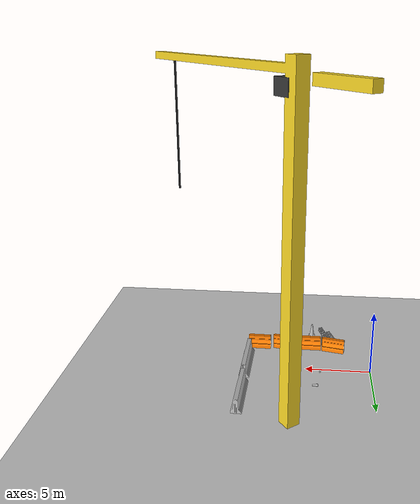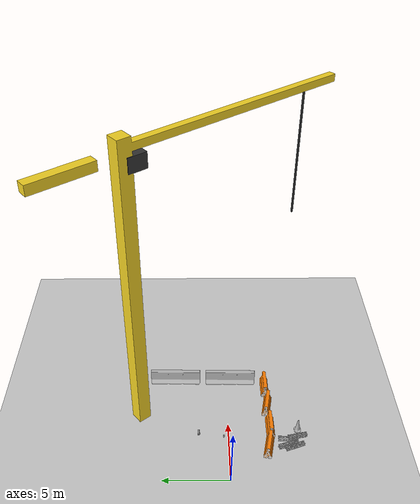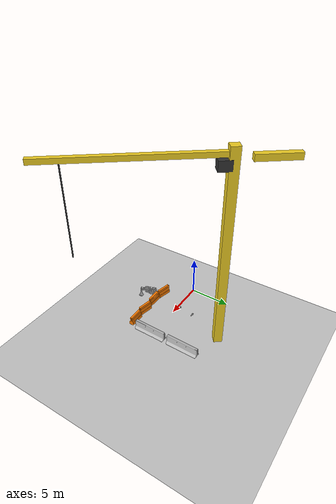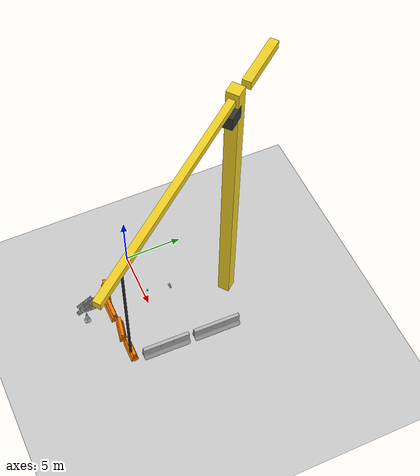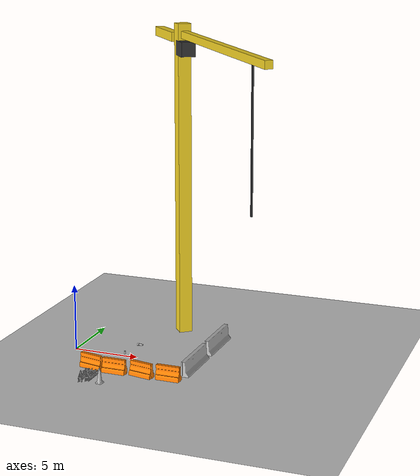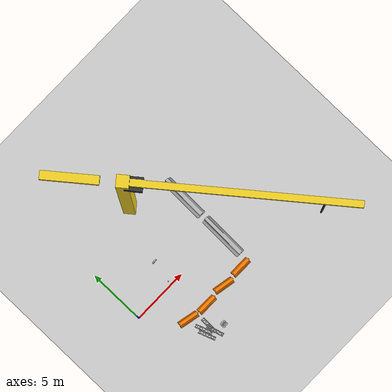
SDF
<sdf version="1.6">
 <world name="default">
  <model name="ground_plane">
   <static>1</static>
   <link name="link">
    <collision name="collision">
     <geometry><plane><normal>0 0 1</normal><size>100 100</size></plane></geometry>
     <surface><friction><ode><mu>100</mu><mu2>50</mu2></ode></friction></surface>
    </collision>
    <visual name="visual">
     <cast_shadows>0</cast_shadows>
     <geometry><plane><normal>0 0 1</normal><size>100 100</size></plane></geometry>
     <material>
      <script><uri>file://media/materials/scripts/gazebo.material</uri><name>Gazebo/Grey</name></script>
     </material>
    </visual>
   </link>
  </model>
  <model name="tower_crane">
   <static>1</static>
   <link name="link">
    <collision name="collision">
     <geometry><mesh><uri>model://tower_crane/meshes/tower_crane.dae</uri></mesh></geometry>
    </collision>
    <visual name="visual">
     <geometry><mesh><uri>model://tower_crane/meshes/tower_crane.dae</uri></mesh></geometry>
    </visual>
   </link>
   <pose>6.03726 6.79238 0 0 0 -0.898155</pose>
  </model>
  <model name="drc_practice_organge_jersey_barrier_clone_clone_clone_clone">
   <static>1</static>
   <link name="link">
    <visual name="visual">
     <geometry>
      <mesh><uri>model://drc_practice_orange_jersey_barrier/meshes/jersey_barrier.dae</uri></mesh>
     </geometry>
    </visual>
    <collision name="collision">
     <geometry>
      <mesh><uri>model://drc_practice_orange_jersey_barrier/meshes/jersey_barrier.dae</uri></mesh>
     </geometry>
    </collision>
   </link>
   <pose>2.74419 -2.98704 0 0 -0 1.36537</pose>
  </model>
  <model name="drc_practice_organge_jersey_barrier_clone_clone_clone_clone_0">
   <static>1</static>
   <link name="link">
    <visual name="visual">
     <geometry>
      <mesh><uri>model://drc_practice_orange_jersey_barrier/meshes/jersey_barrier.dae</uri></mesh>
     </geometry>
    </visual>
    <collision name="collision">
     <geometry>
      <mesh><uri>model://drc_practice_orange_jersey_barrier/meshes/jersey_barrier.dae</uri></mesh>
     </geometry>
    </collision>
   </link>
   <pose>4.65125 -3.23691 0 0 -0 1.56758</pose>
  </model>
  <model name="drc_practice_organge_jersey_barrier_clone_clone_clone_clone_0_clone">
   <static>1</static>
   <link name="link">
    <visual name="visual">
     <geometry>
      <mesh><uri>model://drc_practice_orange_jersey_barrier/meshes/jersey_barrier.dae</uri></mesh>
     </geometry>
    </visual>
    <collision name="collision">
     <geometry>
      <mesh><uri>model://drc_practice_orange_jersey_barrier/meshes/jersey_barrier.dae</uri></mesh>
     </geometry>
    </collision>
   </link>
   <pose>6.73423 -3.15665 0 0 -0 1.3882</pose>
  </model>
  <model name="drc_practice_organge_jersey_barrier_clone_clone_clone_clone_0_clone_0">
   <static>1</static>
   <link name="link">
    <visual name="visual">
     <geometry>
      <mesh><uri>model://drc_practice_orange_jersey_barrier/meshes/jersey_barrier.dae</uri></mesh>
     </geometry>
    </visual>
    <collision name="collision">
     <geometry>
      <mesh><uri>model://drc_practice_orange_jersey_barrier/meshes/jersey_barrier.dae</uri></mesh>
     </geometry>
    </collision>
   </link>
   <pose>8.77452 -3.12573 0 0 -0 1.56758</pose>
  </model>
  <model name="jersey_barrier">
   <static>1</static>
   <link name="link">
    <visual name="visual">
     <geometry><mesh><uri>model://jersey_barrier/meshes/jersey_barrier.dae</uri></mesh></geometry>
    </visual>
    <collision name="upright">
     <pose>0 0 0.5715 0 -0 0</pose>
     <geometry><box><size>4.06542 0.3063 1.143</size></box></geometry>
    </collision>
    <collision name="base">
     <pose>0 0 0.032258 0 -0 0</pose>
     <geometry><box><size>4.06542 0.8107 0.064516</size></box></geometry>
    </collision>
    <collision name="base2">
     <pose>0 0 0.1 0 -0 0</pose>
     <geometry><box><size>4.06542 0.65 0.1</size></box></geometry>
    </collision>
    <collision name="base3">
     <pose>0 0 0.2 0 -0 0</pose>
     <geometry><box><size>4.06542 0.5 0.1</size></box></geometry>
    </collision>
    <collision name="left-angle">
     <pose>0 -0.224 0.2401 0.9 -0 0</pose>
     <geometry><box><size>4.06542 0.5 0.064516</size></box></geometry>
    </collision>
    <collision name="right-angle">
     <pose>0 0.224 0.2401 -0.9 0 0</pose>
     <geometry><box><size>4.06542 0.5 0.064516</size></box></geometry>
    </collision>
   </link>
   <pose>9.63167 -0.326579 0 0 -0 1.55298</pose>
  </model>
  <model name="jersey_barrier_clone">
   <static>1</static>
   <link name="link">
    <visual name="visual">
     <geometry><mesh><uri>model://jersey_barrier/meshes/jersey_barrier.dae</uri></mesh></geometry>
    </visual>
    <collision name="upright">
     <pose>0 0 0.5715 0 -0 0</pose>
     <geometry><box><size>4.06542 0.3063 1.143</size></box></geometry>
    </collision>
    <collision name="base">
     <pose>0 0 0.032258 0 -0 0</pose>
     <geometry><box><size>4.06542 0.8107 0.064516</size></box></geometry>
    </collision>
    <collision name="base2">
     <pose>0 0 0.1 0 -0 0</pose>
     <geometry><box><size>4.06542 0.65 0.1</size></box></geometry>
    </collision>
    <collision name="base3">
     <pose>0 0 0.2 0 -0 0</pose>
     <geometry><box><size>4.06542 0.5 0.1</size></box></geometry>
    </collision>
    <collision name="left-angle">
     <pose>0 -0.224 0.2401 0.9 -0 0</pose>
     <geometry><box><size>4.06542 0.5 0.064516</size></box></geometry>
    </collision>
    <collision name="right-angle">
     <pose>0 0.224 0.2401 -0.9 0 0</pose>
     <geometry><box><size>4.06542 0.5 0.064516</size></box></geometry>
    </collision>
   </link>
   <pose>9.70602 4.18121 0 0 -0 1.55298</pose>
  </model>
  <model name="beer">
   <link name="link">
    <pose>0 0 0.115 0 -0 0</pose>
    <inertial>
     <mass>0.39</mass>
     <inertia><ixx>0.00058</ixx><ixy>0</ixy><ixz>0</ixz><iyy>0.00058</iyy><iyz>0</iyz><izz>0.00019</izz></inertia>
    </inertial>
    <collision name="collision">
     <geometry><cylinder><radius>0.055</radius><length>0.23</length></cylinder></geometry>
    </collision>
    <visual name="visual">
     <geometry><cylinder><radius>0.055</radius><length>0.23</length></cylinder></geometry>
     <material>
      <script>
       <uri>model://beer/materials/scripts</uri>
       <uri>model://beer/materials/textures</uri>
       <name>Beer/Diffuse</name>
      </script>
     </material>
    </visual>
   </link>
   <pose>3.85469 0.373431 -8e-06 0 -0 0.000334</pose>
  </model>
  <model name="standpipe">
   <static>1</static>
   <link name="standpipe">
    <pose>0 0 0.1 0 1.57078 0</pose>
    <collision name="collision_stopper">
     <pose>0 0 0.22 0 -0 0</pose>
     <geometry><cylinder><radius>0.069</radius><length>0.1</length></cylinder></geometry>
     <surface><friction><ode><mu>0.5</mu><mu2>0.5</mu2></ode></friction></surface>
    </collision>
    <collision name="collision">
     <pose>0 0 0.15 0 -0 0</pose>
     <geometry><mesh><uri>model://standpipe/meshes/standpipe.dae</uri></mesh></geometry>
     <surface><friction><ode><mu>0.5</mu><mu2>0.5</mu2></ode></friction></surface>
    </collision>
    <visual name="visual">
     <pose>0 0 0.15 0 -0 0</pose>
     <geometry><mesh><uri>model://standpipe/meshes/standpipe.dae</uri></mesh></geometry>
    </visual>
   </link>
   <pose>3.91415 2.30422 0 0 -0 0</pose>
  </model>
  <model name="truss">
   <link name="link">
    <inertial>
     <mass>20.7307</mass>
     <inertia>
      <ixx>4.7978</ixx>
      <ixy>0</ixy>
      <ixz>0</ixz>
      <iyy>0.4699</iyy>
      <iyz>-0.002</iyz>
      <izz>4.7978</izz>
     </inertia>
    </inertial>
    <collision name="collision">
     <geometry><mesh><uri>model://drc_practice_truss/meshes/truss.dae</uri></mesh></geometry>
     <surface>
      <bounce><restitution_coefficient>0</restitution_coefficient><threshold>100000</threshold></bounce>
      <friction><ode><mu>10</mu><mu2>10</mu2></ode></friction>
     </surface>
    </collision>
    <visual name="visual">
     <geometry><mesh><uri>model://drc_practice_truss/meshes/truss.dae</uri></mesh></geometry>
    </visual>
   </link>
   <pose>3.55011 -4.5392 0.143278 3.8e-05 1.1e-05 -0.014973</pose>
  </model>
  <model name="truss_clone">
   <link name="link">
    <inertial>
     <mass>20.7307</mass>
     <inertia>
      <ixx>4.7978</ixx>
      <ixy>0</ixy>
      <ixz>0</ixz>
      <iyy>0.4699</iyy>
      <iyz>-0.002</iyz>
      <izz>4.7978</izz>
     </inertia>
    </inertial>
    <collision name="collision">
     <geometry><mesh><uri>model://drc_practice_truss/meshes/truss.dae</uri></mesh></geometry>
     <surface>
      <bounce><restitution_coefficient>0</restitution_coefficient><threshold>100000</threshold></bounce>
      <friction><ode><mu>10</mu><mu2>10</mu2></ode></friction>
     </surface>
    </collision>
    <visual name="visual">
     <geometry><mesh><uri>model://drc_practice_truss/meshes/truss.dae</uri></mesh></geometry>
    </visual>
   </link>
   <pose>3.02337 -4.47561 0.147697 -3.14097 -2.3e-05 -2.8191</pose>
  </model>
  <model name="truss_clone_0">
   <link name="link">
    <inertial>
     <mass>20.7307</mass>
     <inertia>
      <ixx>4.7978</ixx>
      <ixy>0</ixy>
      <ixz>0</ixz>
      <iyy>0.4699</iyy>
      <iyz>-0.002</iyz>
      <izz>4.7978</izz>
     </inertia>
    </inertial>
    <collision name="collision">
     <geometry><mesh><uri>model://drc_practice_truss/meshes/truss.dae</uri></mesh></geometry>
     <surface>
      <bounce><restitution_coefficient>0</restitution_coefficient><threshold>100000</threshold></bounce>
      <friction><ode><mu>10</mu><mu2>10</mu2></ode></friction>
     </surface>
    </collision>
    <visual name="visual">
     <geometry><mesh><uri>model://drc_practice_truss/meshes/truss.dae</uri></mesh></geometry>
    </visual>
   </link>
   <pose>3.58412 -5.20453 0.429022 -1.66684 1.48653 1.74295</pose>
  </model>
  <model name="truss_clone_1">
   <link name="link">
    <inertial>
     <mass>20.7307</mass>
     <inertia>
      <ixx>4.7978</ixx>
      <ixy>0</ixy>
      <ixz>0</ixz>
      <iyy>0.4699</iyy>
      <iyz>-0.002</iyz>
      <izz>4.7978</izz>
     </inertia>
    </inertial>
    <collision name="collision">
     <geometry><mesh><uri>model://drc_practice_truss/meshes/truss.dae</uri></mesh></geometry>
     <surface>
      <bounce><restitution_coefficient>0</restitution_coefficient><threshold>100000</threshold></bounce>
      <friction><ode><mu>10</mu><mu2>10</mu2></ode></friction>
     </surface>
    </collision>
    <visual name="visual">
     <geometry><mesh><uri>model://drc_practice_truss/meshes/truss.dae</uri></mesh></geometry>
    </visual>
   </link>
   <pose>2.87636 -4.98996 0.14796 -0.179645 1.57052 0.166097</pose>
  </model>
  <model name="standpipe_clone_0">
   <static>1</static>
   <link name="standpipe">
    <pose>0 0 0.1 0 1.57078 0</pose>
    <collision name="collision_stopper">
     <pose>0 0 0.22 0 -0 0</pose>
     <geometry><cylinder><radius>0.069</radius><length>0.1</length></cylinder></geometry>
     <surface><friction><ode><mu>0.5</mu><mu2>0.5</mu2></ode></friction></surface>
    </collision>
    <collision name="collision">
     <pose>0 0 0.15 0 -0 0</pose>
     <geometry><mesh><uri>model://standpipe/meshes/standpipe.dae</uri></mesh></geometry>
     <surface><friction><ode><mu>0.5</mu><mu2>0.5</mu2></ode></friction></surface>
    </collision>
    <visual name="visual">
     <pose>0 0 0.15 0 -0 0</pose>
     <geometry><mesh><uri>model://standpipe/meshes/standpipe.dae</uri></mesh></geometry>
    </visual>
   </link>
   <pose>3.87778 2.30096 0 0 -0 0</pose>
  </model>
  <model name="Construction Cone_clone_clone_clone_clone">
   <link name="link">
    <collision name="collision">
     <geometry>
      <mesh><scale>10 10 10</scale><uri>model://construction_cone/meshes/construction_cone.dae</uri></mesh>
     </geometry>
    </collision>
    <visual name="visual">
     <geometry>
      <mesh><scale>10 10 10</scale><uri>model://construction_cone/meshes/construction_cone.dae</uri></mesh>
     </geometry>
    </visual>
    <inertial>
     <inertia><ixx>1</ixx><ixy>0</ixy><ixz>0</ixz><iyy>1</iyy><iyz>0</iyz><izz>1</izz></inertia>
     <mass>1</mass>
    </inertial>
   </link>
   <pose>4.49108 -5.34208 -0 0 -0 0</pose>
  </model>
 </world>
</sdf>
